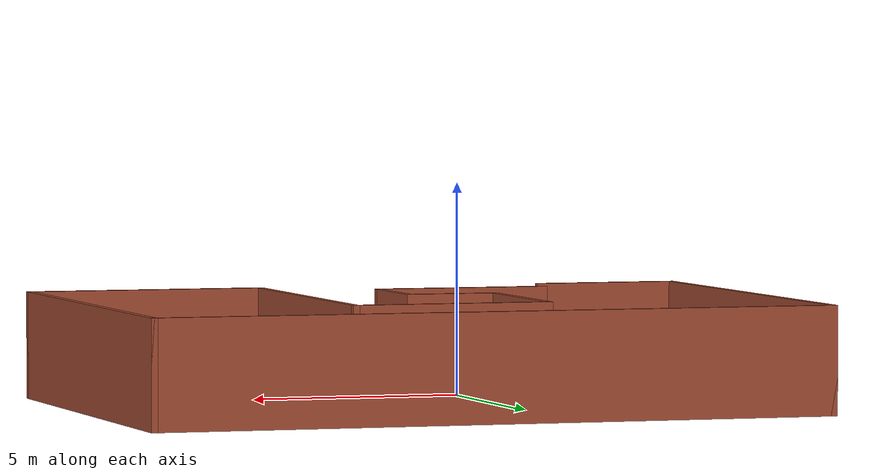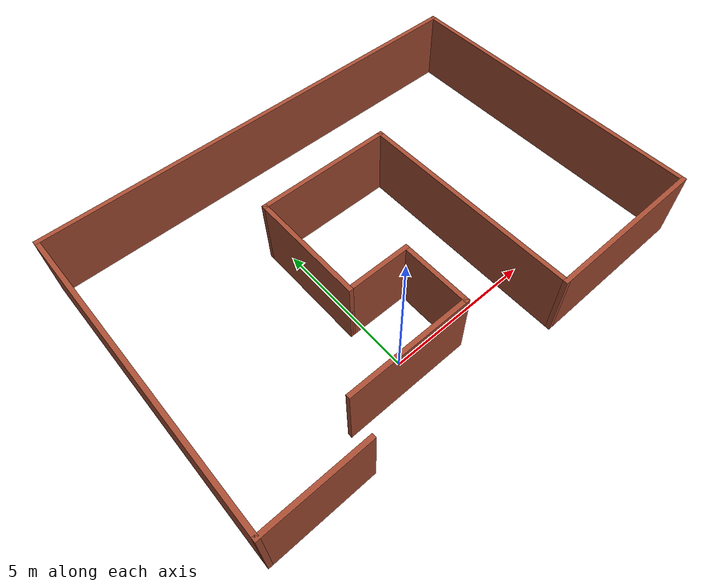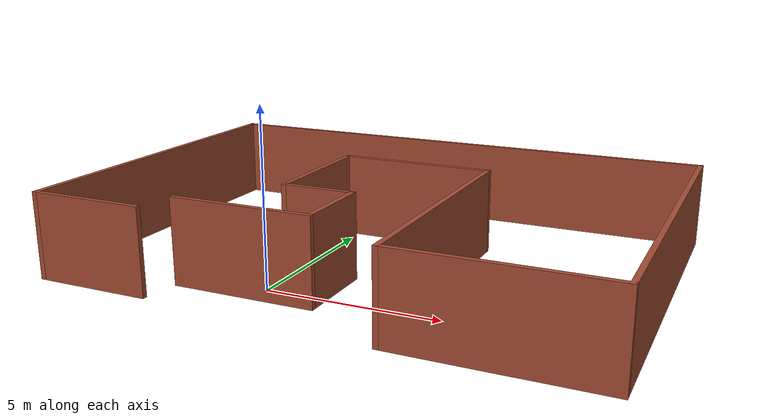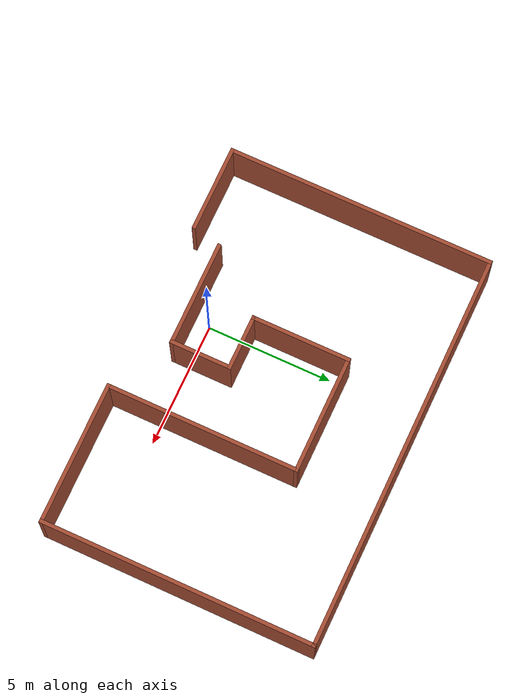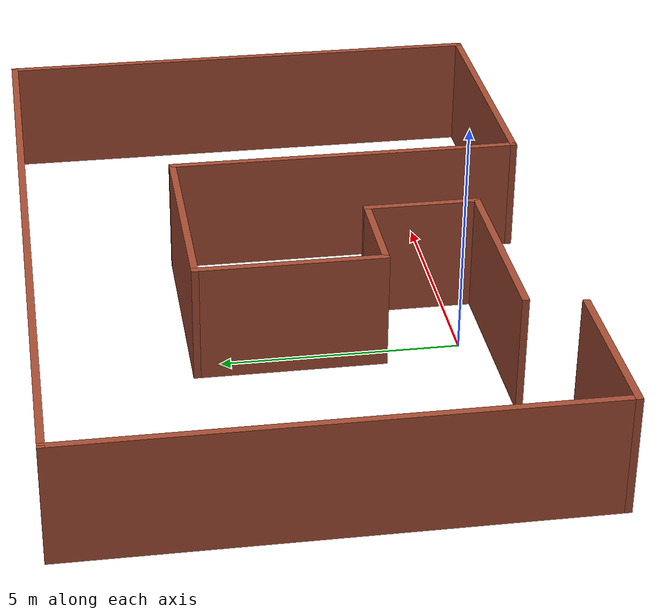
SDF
<?xml version='1.0'?>
<sdf version='1.7'>
  <model name='Inside_a_room'>
    <pose>1.895 3.355 0 0 -0 0</pose>
    <link name='Wall_0'>
      <collision name='Wall_0_Collision'>
        <geometry>
          <box>
            <size>3.5 0.15 2.5</size>
          </box>
        </geometry>
        <pose>0 0 1.25 0 -0 0</pose>
      </collision>
      <visual name='Wall_0_Visual'>
        <pose>0 0 1.25 0 -0 0</pose>
        <geometry>
          <box>
            <size>3.5 0.15 2.5</size>
          </box>
        </geometry>
        <material>
          <script>
            <uri>file://media/materials/scripts/gazebo.material</uri>
            <name>Gazebo/Bricks</name>
          </script>
          <ambient>1 1 1 1</ambient>
        </material>
        <meta>
          <layer>0</layer>
        </meta>
      </visual>
      <pose>-6.25 -5.175 0 0 -0 3.14159</pose>
    </link>
    <link name='Wall_1'>
      <collision name='Wall_1_Collision'>
        <geometry>
          <box>
            <size>10.75 0.15 2.5</size>
          </box>
        </geometry>
        <pose>0 0 1.25 0 -0 0</pose>
      </collision>
      <visual name='Wall_1_Visual'>
        <pose>0 0 1.25 0 -0 0</pose>
        <geometry>
          <box>
            <size>10.75 0.15 2.5</size>
          </box>
        </geometry>
        <material>
          <script>
            <uri>file://media/materials/scripts/gazebo.material</uri>
            <name>Gazebo/Bricks</name>
          </script>
          <ambient>1 1 1 1</ambient>
        </material>
        <meta>
          <layer>0</layer>
        </meta>
      </visual>
      <pose>-7.925 0.125 0 0 -0 1.5708</pose>
    </link>
    <link name='Wall_10'>
      <collision name='Wall_10_Collision'>
        <geometry>
          <box>
            <size>4.25 0.15 2.5</size>
          </box>
        </geometry>
        <pose>0 0 1.25 0 -0 0</pose>
      </collision>
      <visual name='Wall_10_Visual'>
        <pose>0 0 1.25 0 -0 0</pose>
        <geometry>
          <box>
            <size>4.25 0.15 2.5</size>
          </box>
        </geometry>
        <material>
          <script>
            <uri>file://media/materials/scripts/gazebo.material</uri>
            <name>Gazebo/Bricks</name>
          </script>
          <ambient>1 1 1 1</ambient>
        </material>
        <meta>
          <layer>0</layer>
        </meta>
      </visual>
      <pose>-2.225 -4.025 0 0 -0 3.14159</pose>
    </link>
    <link name='Wall_2'>
      <collision name='Wall_2_Collision'>
        <geometry>
          <box>
            <size>16 0.15 2.5</size>
          </box>
        </geometry>
        <pose>0 0 1.25 0 -0 0</pose>
      </collision>
      <visual name='Wall_2_Visual'>
        <pose>0 0 1.25 0 -0 0</pose>
        <geometry>
          <box>
            <size>16 0.15 2.5</size>
          </box>
        </geometry>
        <material>
          <script>
            <uri>file://media/materials/scripts/gazebo.material</uri>
            <name>Gazebo/Bricks</name>
          </script>
          <ambient>1 1 1 1</ambient>
        </material>
        <meta>
          <layer>0</layer>
        </meta>
      </visual>
      <pose>0 5.425 0 0 -0 0</pose>
    </link>
    <link name='Wall_3'>
      <collision name='Wall_3_Collision'>
        <geometry>
          <box>
            <size>11 0.15 2.5</size>
          </box>
        </geometry>
        <pose>0 0 1.25 0 -0 0</pose>
      </collision>
      <visual name='Wall_3_Visual'>
        <pose>0 0 1.25 0 -0 0</pose>
        <geometry>
          <box>
            <size>11 0.15 2.5</size>
          </box>
        </geometry>
        <material>
          <script>
            <uri>file://media/materials/scripts/gazebo.material</uri>
            <name>Gazebo/Bricks</name>
          </script>
          <ambient>1 1 1 1</ambient>
        </material>
        <meta>
          <layer>0</layer>
        </meta>
      </visual>
      <pose>7.925 0 0 0 -0 -1.5708</pose>
    </link>
    <link name='Wall_4'>
      <collision name='Wall_4_Collision'>
        <geometry>
          <box>
            <size>5.75 0.15 2.5</size>
          </box>
        </geometry>
        <pose>0 0 1.25 0 -0 0</pose>
      </collision>
      <visual name='Wall_4_Visual'>
        <pose>0 0 1.25 0 -0 0</pose>
        <geometry>
          <box>
            <size>5.75 0.15 2.5</size>
          </box>
        </geometry>
        <material>
          <script>
            <uri>file://media/materials/scripts/gazebo.material</uri>
            <name>Gazebo/Bricks</name>
          </script>
          <ambient>1 1 1 1</ambient>
        </material>
        <meta>
          <layer>0</layer>
        </meta>
      </visual>
      <pose>5.125 -5.425 0 0 -0 3.14159</pose>
    </link>
    <link name='Wall_5'>
      <collision name='Wall_5_Collision'>
        <geometry>
          <box>
            <size>7.75 0.15 2.5</size>
          </box>
        </geometry>
        <pose>0 0 1.25 0 -0 0</pose>
      </collision>
      <visual name='Wall_5_Visual'>
        <pose>0 0 1.25 0 -0 0</pose>
        <geometry>
          <box>
            <size>7.75 0.15 2.5</size>
          </box>
        </geometry>
        <material>
          <script>
            <uri>file://media/materials/scripts/gazebo.material</uri>
            <name>Gazebo/Bricks</name>
          </script>
          <ambient>1 1 1 1</ambient>
        </material>
        <meta>
          <layer>0</layer>
        </meta>
      </visual>
      <pose>2.325 -1.625 0 0 -0 1.5708</pose>
    </link>
    <link name='Wall_6'>
      <collision name='Wall_6_Collision'>
        <geometry>
          <box>
            <size>4.75 0.15 2.5</size>
          </box>
        </geometry>
        <pose>0 0 1.25 0 -0 0</pose>
      </collision>
      <visual name='Wall_6_Visual'>
        <pose>0 0 1.25 0 -0 0</pose>
        <geometry>
          <box>
            <size>4.75 0.15 2.5</size>
          </box>
        </geometry>
        <material>
          <script>
            <uri>file://media/materials/scripts/gazebo.material</uri>
            <name>Gazebo/Bricks</name>
          </script>
          <ambient>1 1 1 1</ambient>
        </material>
        <meta>
          <layer>0</layer>
        </meta>
      </visual>
      <pose>0.025 2.175 0 0 -0 3.14159</pose>
    </link>
    <link name='Wall_7'>
      <collision name='Wall_7_Collision'>
        <geometry>
          <box>
            <size>4 0.15 2.5</size>
          </box>
        </geometry>
        <pose>0 0 1.25 0 -0 0</pose>
      </collision>
      <visual name='Wall_7_Visual'>
        <pose>0 0 1.25 0 -0 0</pose>
        <geometry>
          <box>
            <size>4 0.15 2.5</size>
          </box>
        </geometry>
        <material>
          <script>
            <uri>file://media/materials/scripts/gazebo.material</uri>
            <name>Gazebo/Bricks</name>
          </script>
          <ambient>1 1 1 1</ambient>
        </material>
        <meta>
          <layer>0</layer>
        </meta>
      </visual>
      <pose>-2.275 0.25 0 0 -0 -1.5708</pose>
    </link>
    <link name='Wall_8'>
      <collision name='Wall_8_Collision'>
        <geometry>
          <box>
            <size>2.25 0.15 2.5</size>
          </box>
        </geometry>
        <pose>0 0 1.25 0 -0 0</pose>
      </collision>
      <visual name='Wall_8_Visual'>
        <pose>0 0 1.25 0 -0 0</pose>
        <geometry>
          <box>
            <size>2.25 0.15 2.5</size>
          </box>
        </geometry>
        <material>
          <script>
            <uri>file://media/materials/scripts/gazebo.material</uri>
            <name>Gazebo/Bricks</name>
          </script>
          <ambient>1 1 1 1</ambient>
        </material>
        <meta>
          <layer>0</layer>
        </meta>
      </visual>
      <pose>-1.225 -1.675 0 0 -0 0</pose>
    </link>
    <link name='Wall_9'>
      <collision name='Wall_9_Collision'>
        <geometry>
          <box>
            <size>2.5 0.15 2.5</size>
          </box>
        </geometry>
        <pose>0 0 1.25 0 -0 0</pose>
      </collision>
      <visual name='Wall_9_Visual'>
        <pose>0 0 1.25 0 -0 0</pose>
        <geometry>
          <box>
            <size>2.5 0.15 2.5</size>
          </box>
        </geometry>
        <material>
          <script>
            <uri>file://media/materials/scripts/gazebo.material</uri>
            <name>Gazebo/Bricks</name>
          </script>
          <ambient>1 1 1 1</ambient>
        </material>
        <meta>
          <layer>0</layer>
        </meta>
      </visual>
      <pose>-0.175 -2.85 0 0 -0 -1.5708</pose>
    </link>
    <static>1</static>
  </model>
</sdf>
